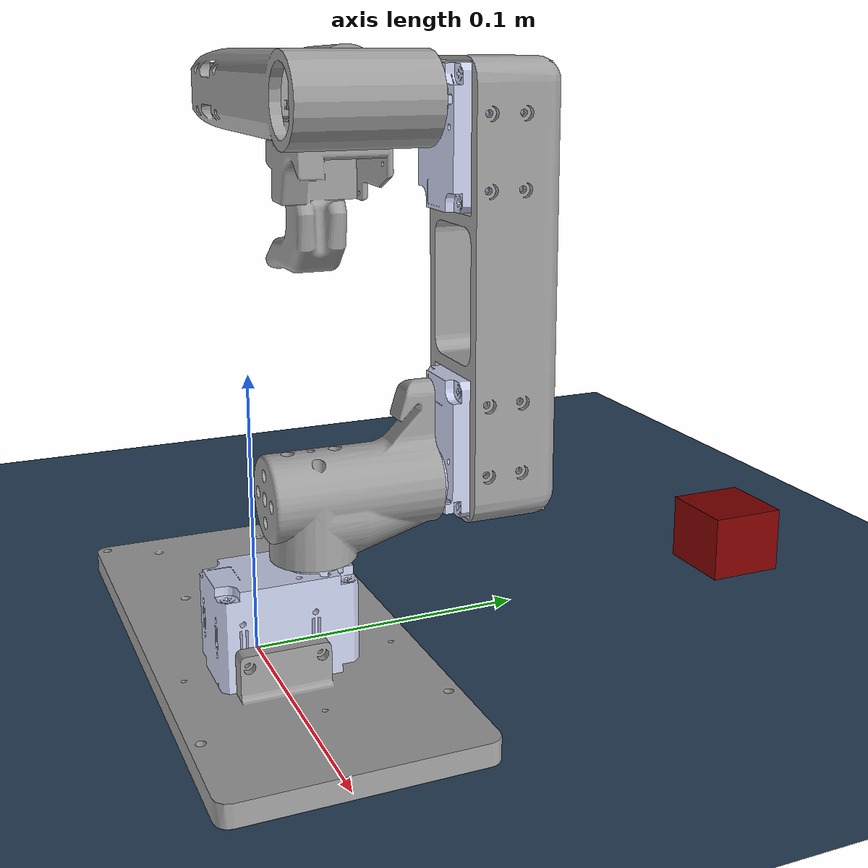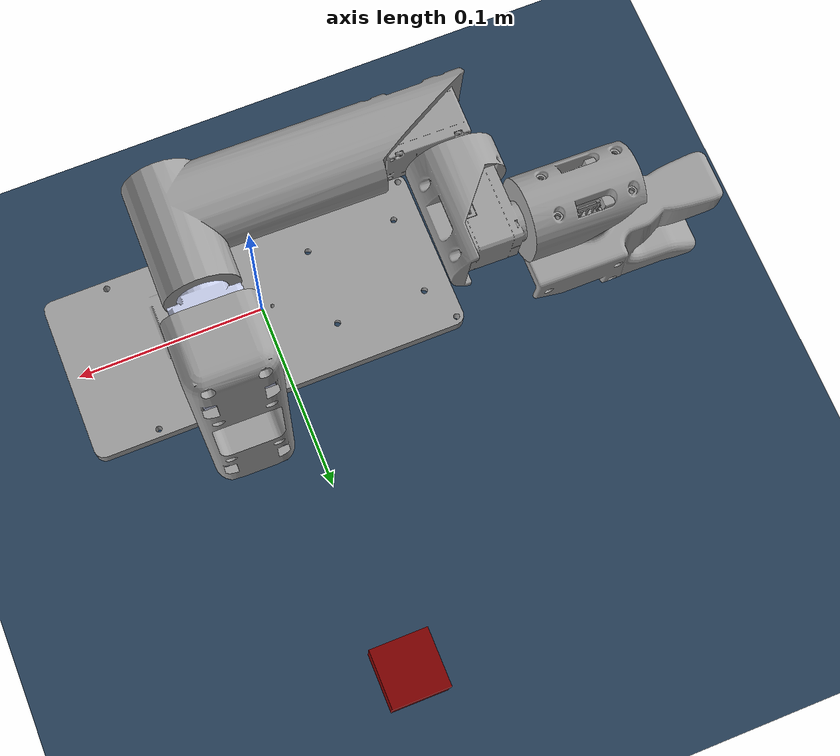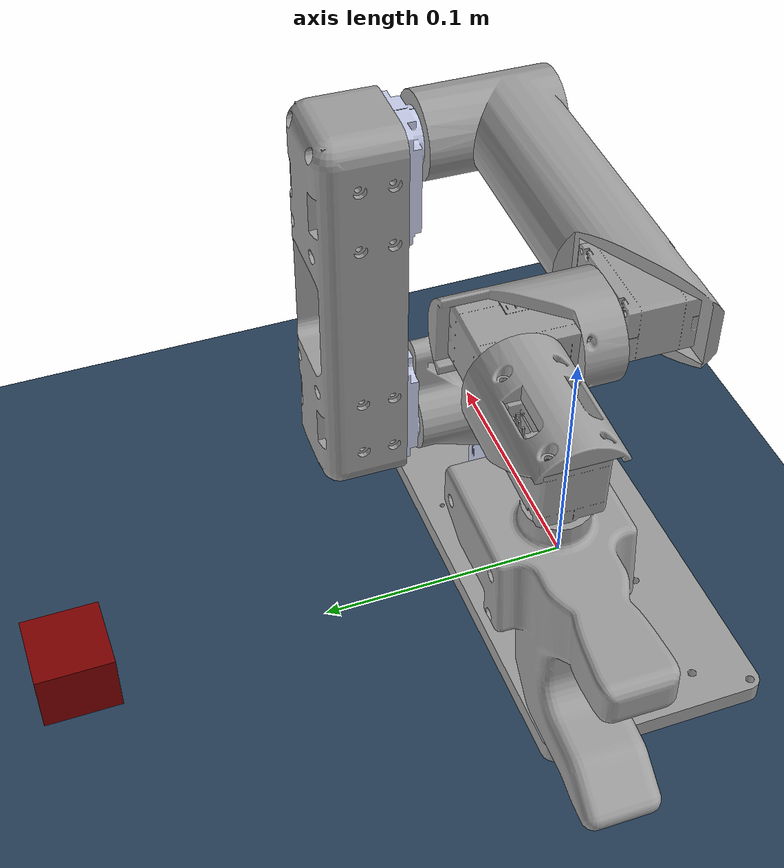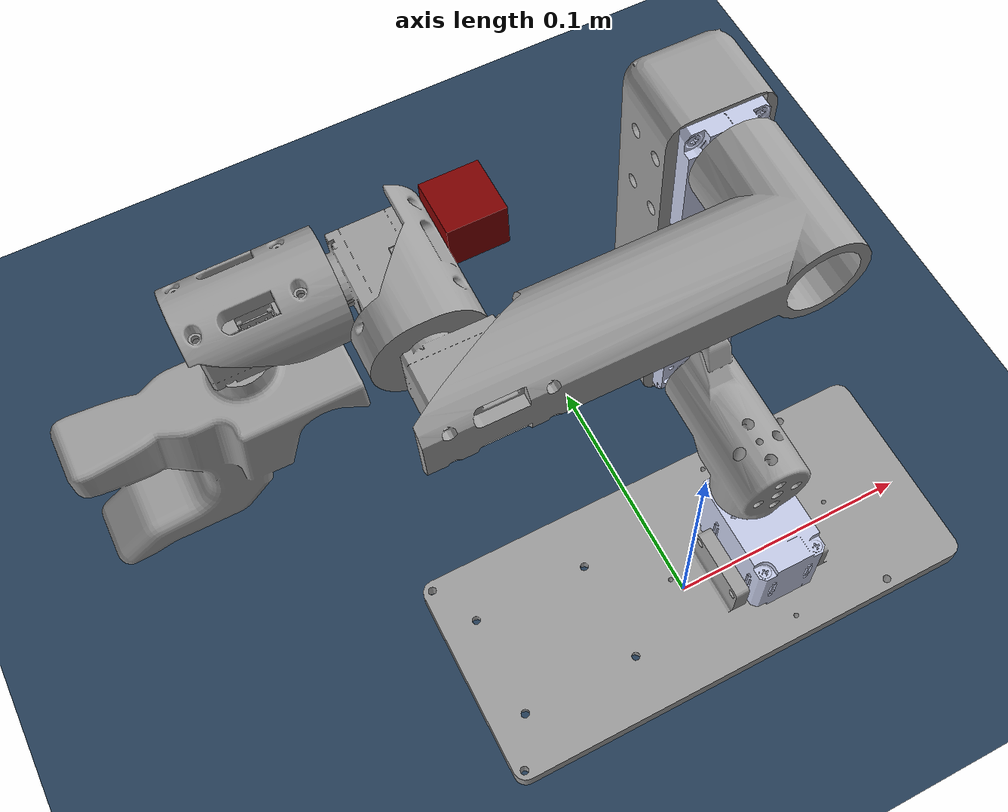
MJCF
<mujoco model="gello_active">
  <!-- The timestep has a big influence on the contacts stability -->
  <option cone="elliptic" impratio="10" timestep="0.001"/>

  <include file="gello_active.xml"/>

  <statistic center="0 0 0.1" extent="0.6"/>

  <visual>
    <headlight diffuse="0.6 0.6 0.6" ambient="0.3 0.3 0.3" specular="0 0 0"/>
    <rgba haze="0.15 0.25 0.35 1"/>
  </visual>

  <asset>
    <texture type="skybox" builtin="gradient" rgb1="0.3 0.5 0.7" rgb2="0 0 0" width="512" height="3072"/>
    <texture type="2d" name="groundplane" builtin="checker" mark="edge" rgb1="0.2 0.3 0.4" rgb2="0.1 0.2 0.3"
      markrgb="0.8 0.8 0.8" width="300" height="300"/>
    <material name="groundplane" texture="groundplane" texuniform="true" texrepeat="5 5" reflectance="0.2"/>
  </asset>

  <worldbody>
    <light pos="0 0 1.5" dir="0 0 -1" directional="true"/>
    <geom name="floor" size="0 0 0.05" type="plane" material="groundplane" pos="0 0 0" friction="0.1"/>
    <body name="box" pos="0.0 0.2 0.01">
        <freejoint name="red_box_joint"/>
        <inertial pos="0 0 0" mass="0.1" diaginertia="0.00016667 0.00016667 0.00016667"/>
        <geom friction="0.5" condim="3" pos="0 0 0" size="0.015 0.015 0.015" type="box" name="red_box" rgba="0.5 0 0 1" priority="1"/>
    </body>
  </worldbody>

</mujoco>

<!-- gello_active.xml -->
<mujoco model="gello_active">
    <compiler angle="radian" meshdir="assets/gello_active"/>
    <size njmax="500" nconmax="100" />
    <asset>
        <mesh name="base_link" file="base_link.STL" />
        <mesh name="xl430_1" file="xl430_1.STL" />
        <mesh name="L1" file="L1.STL" />
        <mesh name="xl430_2" file="xl430_2.STL" />
        <mesh name="L2" file="L2.STL" />
        <mesh name="xl430_3" file="xl430_3.STL" />
        <mesh name="L3" file="L3.STL" />
        <mesh name="xl330_1" file="xl330_1.STL" />
        <mesh name="L4" file="L4.STL" />
        <mesh name="xl330_2" file="xl330_2.STL" />
        <mesh name="L5" file="L5.STL" />
        <mesh name="xl330_3" file="xl330_3.STL" />
        <mesh name="end_effector" file="end_effector.STL" />
    </asset>

    <default>
        <default class="gello_active">
            <general biastype="affine"/>
            <joint axis="0 1 0"/>
            <default class="shoulder_pan_joint">
                <joint pos="0 0 0" axis="0 1 0" range="-3.14158 3.14158" damping="0.1"/>
                <position ctrlrange="-3.14158 3.14158" kp="25"/>
            </default>
            <default class="shoulder_lift_joint">
                <joint pos="0 0 0" axis="0 0 1" range="-3.14158 3.14158" damping="0.1"/>
                <position ctrlrange="-3.14158 3.14158" kp="25"/>
            </default>
            <default class="elbow_joint">
                <joint pos="0 0 0" axis="1 0 0" range="-3.14158 3.14158" damping="0.1"/>
                <position ctrlrange="-3.14158 3.14158" kp="25"/>
            </default>
            <default class="wrist1_joint">
                <joint pos="0 0 0" axis="0 0 1" range="-3.14158 3.14158" damping="0.1"/>
                <position ctrlrange="-3.14158 3.14158" kp="25"/>
            </default>
            <default class="wrist2_joint">
                <joint pos="0 0 0" axis="0 1 0" range="-3.14158 3.14158" damping="0.1"/>
                <position ctrlrange="-3.14158 3.14158" kp="25"/>
            </default>
            <default class="end_effector_joint">
                <joint pos="0 0 0" axis="0 1 0" range="-3.14158 3.14158" damping="0.1"/>
                <position ctrlrange="-3.14158 3.14158" kp="25"/>
            </default>
        </default>
    </default>

    <worldbody>
    <body name="robot" pos="0 0 0.017">
        <geom type="mesh" rgba="0.627451 0.627451 0.627451 1" mesh="base_link" />
        <geom pos="0.031148 0.02289 -0.18013" type="mesh" rgba="0.792157 0.819608 0.933333 1" mesh="xl430_1" />
        <body name="L1" pos="0.031148 0.01189 0.02751" quat="0.502989 0.502991 0.496993 0.496991">
            <inertial pos="0.0131095 0.0200186 3.85053e-08" quat="-0.0986588 0.700193 0.0986542 0.700189" mass="0.0422302" diaginertia="1.64424e-05 1.44945e-05 6.77482e-06" />
            <joint name="shoulder_pan_joint" class="shoulder_pan_joint"/>
            <geom type="mesh" rgba="0.627451 0.627451 0.627451 1" mesh="L1" />
            <body name="xl430_2" pos="0.03915 0.021935 0" quat="0.00116283 0.707106 -0.00116802 -0.707106">
                <inertial pos="-7.49656e-05 -0.0631752 -0.0234315" quat="0.500588 0.499795 -0.500205 0.499411" mass="0.139266" diaginertia="0.000357155 0.000354897 3.15121e-05" />
                <joint name="shoulder_lift_joint" class="shoulder_lift_joint"/>
                <geom type="mesh" rgba="0.792157 0.819608 0.933333 1" mesh="xl430_2" />
                <geom pos="0 -0.0178 -0.04565" quat="-0.499604 0.500398 0.499602 0.500396" type="mesh" rgba="0.627451 0.627451 0.627451 1" mesh="L2" />
                <geom pos="-0.000190568 -0.13735 -0.21035" quat="0.00079449 -1.45917e-09 -1.83661e-06 1" type="mesh" rgba="0.792157 0.819608 0.933333 1" mesh="xl430_3" />
                <body name="L3" pos="-0.00017309 -0.126351 -0.00399996" quat="0.707108 -0.000318201 0.707105 0.000320793">
                    <inertial pos="-0.0311885 6.3421e-07 0.0515904" quat="0.70531 -0.0493785 -0.0493588 0.705452" mass="0.0644622" diaginertia="0.000119343 0.000116078 1.38586e-05" />
                    <joint name="elbow_joint" class="elbow_joint"/>
                    <geom type="mesh" rgba="0.627451 0.627451 0.627451 1" mesh="L3" />
                    <geom pos="-0.4171 0.075425 0.13419" quat="0.499998 -0.5 0.500002 -0.5" type="mesh" rgba="0.627451 0.627451 0.627451 1" mesh="xl330_1" />
                    <body name="L4" pos="-0.0210704 -1.4547e-06 0.106597" quat="0.493633 -0.506285 0.493637 -0.506285">
                        <inertial pos="-0.000475342 0.00136855 0.0205829" quat="0.99748 -0.0709501 2.68599e-05 0.000273644" mass="0.029294" diaginertia="7.17615e-06 6.48434e-06 3.71188e-06" />
                        <joint name="wrist1_joint" class="wrist1_joint"/>
                        <geom type="mesh" rgba="0.627451 0.627451 0.627451 1" mesh="L4" />
                        <geom pos="0.07495 0.38155 0.061433" quat="-2.59734e-06 2.59735e-06 0.707108 -0.707105" type="mesh" rgba="0.627451 0.627451 0.627451 1" mesh="xl330_2" />
                        <body name="L5" pos="-0.000477906 -0.0139893 0.0338395" quat="0.00077795 3.6732e-06 1 3.67035e-06">
                            <inertial pos="-0.00143676 -0.020819 1.34472e-06" quat="0.536112 0.460617 -0.536544 0.461017" mass="0.0295406" diaginertia="6.81484e-06 6.32502e-06 3.76696e-06" />
                            <joint name="wrist2_joint" class="wrist2_joint"/>
                            <geom type="mesh" rgba="0.627451 0.627451 0.627451 1" mesh="L5" />
                            <geom pos="-0.38197 -0.06135 0.075425" quat="0.707105 0 0.707108 0" type="mesh" rgba="0.627451 0.627451 0.627451 1" mesh="xl330_3" />
                            <body name="end_effector" pos="0.0144797 -0.033758 -1.45624e-06" quat="0.500896 0.499101 0.499101 -0.500899">
                                <inertial pos="-0.000754674 0.0314156 0.0190544" quat="0.929361 -0.368647 0.0184496 0.00689113" mass="0.0630826" diaginertia="5.12961e-05 4.16507e-05 1.99882e-05" />
                                <joint name="end_effector_joint" class="end_effector_joint"/>
                                <geom type="mesh" rgba="0.627451 0.627451 0.627451 1" mesh="end_effector" />
                            </body>
                        </body>
                    </body>
                </body>
            </body>
        </body>
    </body>
    </worldbody>

    <actuator>
        <position class="shoulder_pan_joint" name="shoulder_pan_joint" joint="shoulder_pan_joint"/>
        <position class="shoulder_lift_joint" name="shoulder_lift_joint" joint="shoulder_lift_joint"/>
        <position class="elbow_joint" name="elbow_joint" joint="elbow_joint"/>
        <position class="wrist1_joint" name="wrist1_joint" joint="wrist1_joint"/>
        <position class="wrist2_joint" name="wrist2_joint" joint="wrist2_joint"/>
        <position class="end_effector_joint" name="end_effector_joint" joint="end_effector_joint"/>
    </actuator>

</mujoco>
